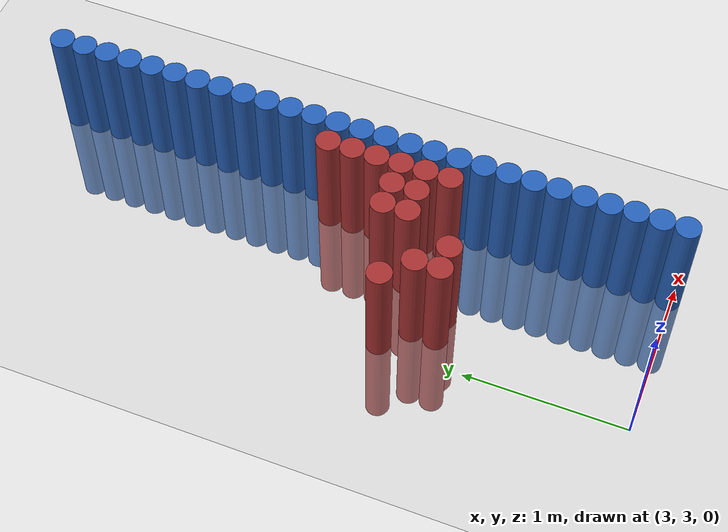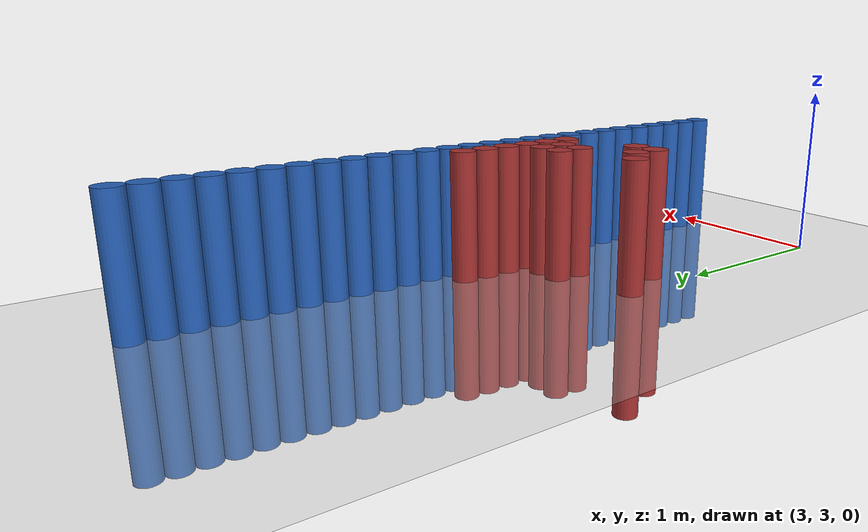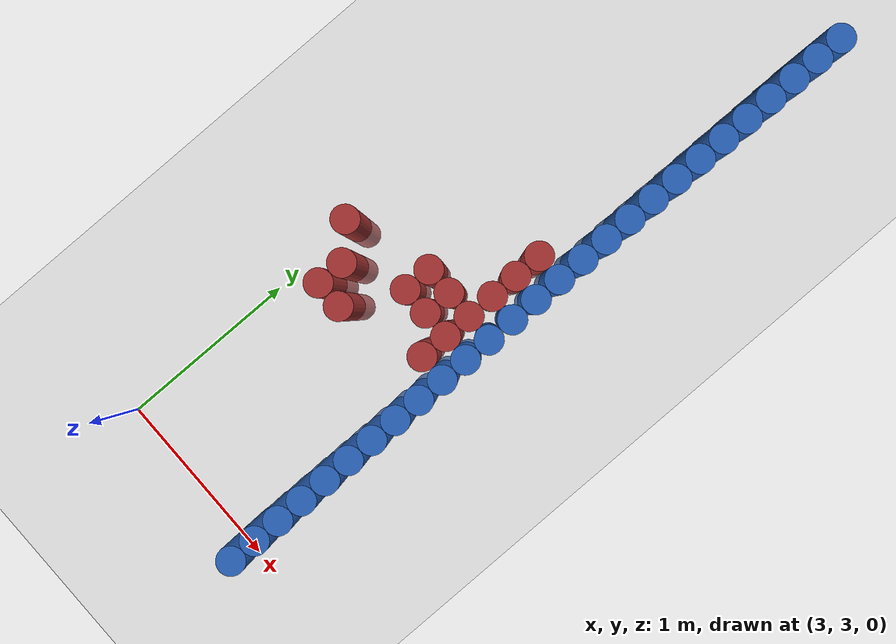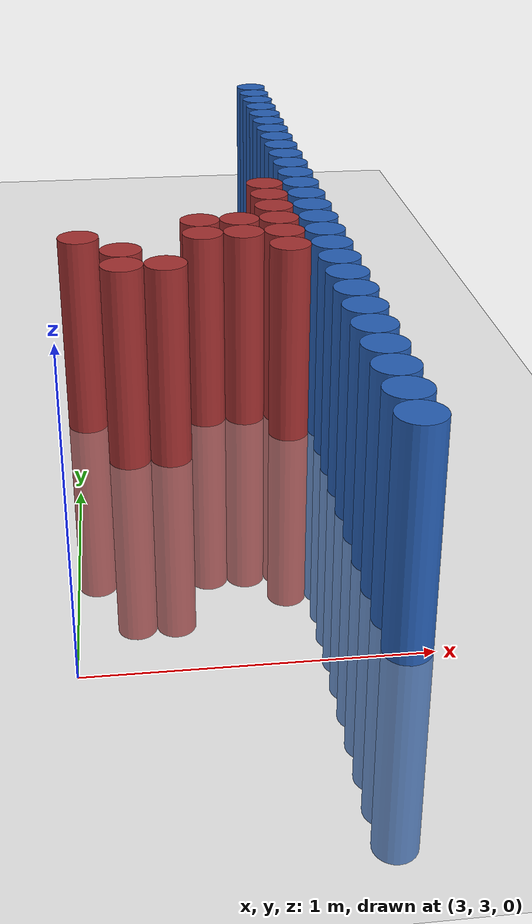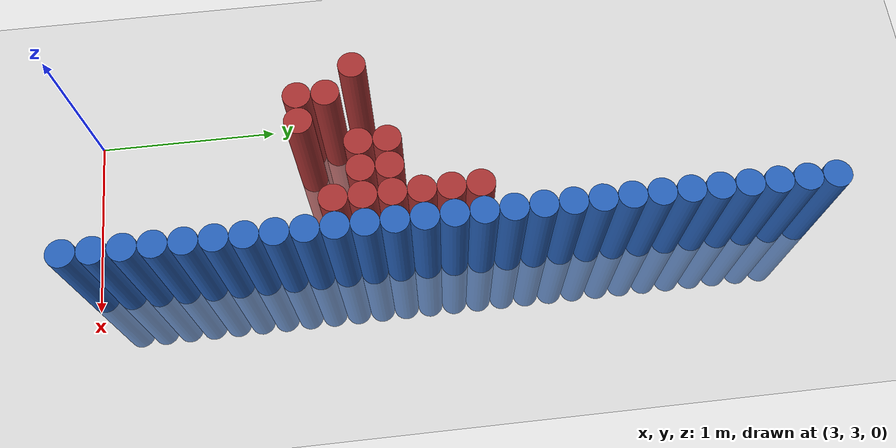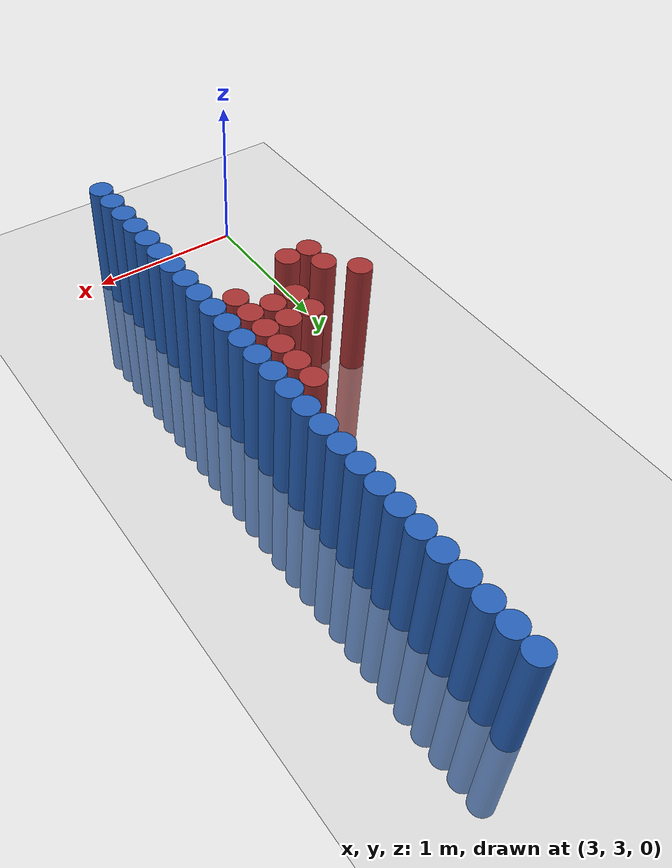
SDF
<sdf version="1.7">
 <world name="default">
  <model name="ground_plane">
   <static>1</static>
   <link name="link">
    <collision name="collision">
     <geometry><plane><normal>0 0 1</normal><size>100 100</size></plane></geometry>
     <surface><friction><ode><mu>100</mu><mu2>50</mu2></ode></friction></surface>
    </collision>
    <visual name="visual">
     <cast_shadows>0</cast_shadows>
     <geometry><plane><normal>0 0 1</normal><size>100 100</size></plane></geometry>
     <material>
      <script><uri>file://media/materials/scripts/gazebo.material</uri><name>Gazebo/Grey</name></script>
     </material>
    </visual>
   </link>
  </model>
  <model name="unit_cylinder_154">
   <static>1</static>
   <pose>3.925 3.025 0 0 -0 0</pose>
   <link name="link">
    <inertial>
     <mass>1</mass>
     <inertia><ixx>0.145833</ixx><ixy>0</ixy><ixz>0</ixz><iyy>0.145833</iyy><iyz>0</iyz><izz>0.125</izz></inertia>
    </inertial>
    <collision name="collision">
     <geometry><cylinder><radius>0.075</radius><length>1.5</length></cylinder></geometry>
    </collision>
    <visual name="visual">
     <geometry><cylinder><radius>0.075</radius><length>1.5</length></cylinder></geometry>
     <material><ambient>0.152 0.379 0.72 1</ambient><diffuse>0.152 0.379 0.72 1</diffuse></material>
     <material>
      <script><name>Gazebo/Grey</name><uri>file://media/materials/scripts/gazebo.material</uri></script>
     </material>
    </visual>
   </link>
  </model>
  <model name="unit_cylinder_156">
   <static>1</static>
   <pose>3.925 3.175 0 0 -0 0</pose>
   <link name="link">
    <inertial>
     <mass>1</mass>
     <inertia><ixx>0.145833</ixx><ixy>0</ixy><ixz>0</ixz><iyy>0.145833</iyy><iyz>0</iyz><izz>0.125</izz></inertia>
    </inertial>
    <collision name="collision">
     <geometry><cylinder><radius>0.075</radius><length>1.5</length></cylinder></geometry>
    </collision>
    <visual name="visual">
     <geometry><cylinder><radius>0.075</radius><length>1.5</length></cylinder></geometry>
     <material><ambient>0.152 0.379 0.72 1</ambient><diffuse>0.152 0.379 0.72 1</diffuse></material>
     <material>
      <script><name>Gazebo/Grey</name><uri>file://media/materials/scripts/gazebo.material</uri></script>
     </material>
    </visual>
   </link>
  </model>
  <model name="unit_cylinder_158">
   <static>1</static>
   <pose>3.925 3.325 0 0 -0 0</pose>
   <link name="link">
    <inertial>
     <mass>1</mass>
     <inertia><ixx>0.145833</ixx><ixy>0</ixy><ixz>0</ixz><iyy>0.145833</iyy><iyz>0</iyz><izz>0.125</izz></inertia>
    </inertial>
    <collision name="collision">
     <geometry><cylinder><radius>0.075</radius><length>1.5</length></cylinder></geometry>
    </collision>
    <visual name="visual">
     <geometry><cylinder><radius>0.075</radius><length>1.5</length></cylinder></geometry>
     <material><ambient>0.152 0.379 0.72 1</ambient><diffuse>0.152 0.379 0.72 1</diffuse></material>
     <material>
      <script><name>Gazebo/Grey</name><uri>file://media/materials/scripts/gazebo.material</uri></script>
     </material>
    </visual>
   </link>
  </model>
  <model name="unit_cylinder_160">
   <static>1</static>
   <pose>3.925 3.475 0 0 -0 0</pose>
   <link name="link">
    <inertial>
     <mass>1</mass>
     <inertia><ixx>0.145833</ixx><ixy>0</ixy><ixz>0</ixz><iyy>0.145833</iyy><iyz>0</iyz><izz>0.125</izz></inertia>
    </inertial>
    <collision name="collision">
     <geometry><cylinder><radius>0.075</radius><length>1.5</length></cylinder></geometry>
    </collision>
    <visual name="visual">
     <geometry><cylinder><radius>0.075</radius><length>1.5</length></cylinder></geometry>
     <material><ambient>0.152 0.379 0.72 1</ambient><diffuse>0.152 0.379 0.72 1</diffuse></material>
     <material>
      <script><name>Gazebo/Grey</name><uri>file://media/materials/scripts/gazebo.material</uri></script>
     </material>
    </visual>
   </link>
  </model>
  <model name="unit_cylinder_162">
   <static>1</static>
   <pose>3.925 3.625 0 0 -0 0</pose>
   <link name="link">
    <inertial>
     <mass>1</mass>
     <inertia><ixx>0.145833</ixx><ixy>0</ixy><ixz>0</ixz><iyy>0.145833</iyy><iyz>0</iyz><izz>0.125</izz></inertia>
    </inertial>
    <collision name="collision">
     <geometry><cylinder><radius>0.075</radius><length>1.5</length></cylinder></geometry>
    </collision>
    <visual name="visual">
     <geometry><cylinder><radius>0.075</radius><length>1.5</length></cylinder></geometry>
     <material><ambient>0.152 0.379 0.72 1</ambient><diffuse>0.152 0.379 0.72 1</diffuse></material>
     <material>
      <script><name>Gazebo/Grey</name><uri>file://media/materials/scripts/gazebo.material</uri></script>
     </material>
    </visual>
   </link>
  </model>
  <model name="unit_cylinder_164">
   <static>1</static>
   <pose>3.925 3.775 0 0 -0 0</pose>
   <link name="link">
    <inertial>
     <mass>1</mass>
     <inertia><ixx>0.145833</ixx><ixy>0</ixy><ixz>0</ixz><iyy>0.145833</iyy><iyz>0</iyz><izz>0.125</izz></inertia>
    </inertial>
    <collision name="collision">
     <geometry><cylinder><radius>0.075</radius><length>1.5</length></cylinder></geometry>
    </collision>
    <visual name="visual">
     <geometry><cylinder><radius>0.075</radius><length>1.5</length></cylinder></geometry>
     <material><ambient>0.152 0.379 0.72 1</ambient><diffuse>0.152 0.379 0.72 1</diffuse></material>
     <material>
      <script><name>Gazebo/Grey</name><uri>file://media/materials/scripts/gazebo.material</uri></script>
     </material>
    </visual>
   </link>
  </model>
  <model name="unit_cylinder_166">
   <static>1</static>
   <pose>3.925 3.925 0 0 -0 0</pose>
   <link name="link">
    <inertial>
     <mass>1</mass>
     <inertia><ixx>0.145833</ixx><ixy>0</ixy><ixz>0</ixz><iyy>0.145833</iyy><iyz>0</iyz><izz>0.125</izz></inertia>
    </inertial>
    <collision name="collision">
     <geometry><cylinder><radius>0.075</radius><length>1.5</length></cylinder></geometry>
    </collision>
    <visual name="visual">
     <geometry><cylinder><radius>0.075</radius><length>1.5</length></cylinder></geometry>
     <material><ambient>0.152 0.379 0.72 1</ambient><diffuse>0.152 0.379 0.72 1</diffuse></material>
     <material>
      <script><name>Gazebo/Grey</name><uri>file://media/materials/scripts/gazebo.material</uri></script>
     </material>
    </visual>
   </link>
  </model>
  <model name="unit_cylinder_168">
   <static>1</static>
   <pose>3.925 4.075 0 0 -0 0</pose>
   <link name="link">
    <inertial>
     <mass>1</mass>
     <inertia><ixx>0.145833</ixx><ixy>0</ixy><ixz>0</ixz><iyy>0.145833</iyy><iyz>0</iyz><izz>0.125</izz></inertia>
    </inertial>
    <collision name="collision">
     <geometry><cylinder><radius>0.075</radius><length>1.5</length></cylinder></geometry>
    </collision>
    <visual name="visual">
     <geometry><cylinder><radius>0.075</radius><length>1.5</length></cylinder></geometry>
     <material><ambient>0.152 0.379 0.72 1</ambient><diffuse>0.152 0.379 0.72 1</diffuse></material>
     <material>
      <script><name>Gazebo/Grey</name><uri>file://media/materials/scripts/gazebo.material</uri></script>
     </material>
    </visual>
   </link>
  </model>
  <model name="unit_cylinder_170">
   <static>1</static>
   <pose>3.925 4.225 0 0 -0 0</pose>
   <link name="link">
    <inertial>
     <mass>1</mass>
     <inertia><ixx>0.145833</ixx><ixy>0</ixy><ixz>0</ixz><iyy>0.145833</iyy><iyz>0</iyz><izz>0.125</izz></inertia>
    </inertial>
    <collision name="collision">
     <geometry><cylinder><radius>0.075</radius><length>1.5</length></cylinder></geometry>
    </collision>
    <visual name="visual">
     <geometry><cylinder><radius>0.075</radius><length>1.5</length></cylinder></geometry>
     <material><ambient>0.152 0.379 0.72 1</ambient><diffuse>0.152 0.379 0.72 1</diffuse></material>
     <material>
      <script><name>Gazebo/Grey</name><uri>file://media/materials/scripts/gazebo.material</uri></script>
     </material>
    </visual>
   </link>
  </model>
  <model name="unit_cylinder_172">
   <static>1</static>
   <pose>3.925 4.375 0 0 -0 0</pose>
   <link name="link">
    <inertial>
     <mass>1</mass>
     <inertia><ixx>0.145833</ixx><ixy>0</ixy><ixz>0</ixz><iyy>0.145833</iyy><iyz>0</iyz><izz>0.125</izz></inertia>
    </inertial>
    <collision name="collision">
     <geometry><cylinder><radius>0.075</radius><length>1.5</length></cylinder></geometry>
    </collision>
    <visual name="visual">
     <geometry><cylinder><radius>0.075</radius><length>1.5</length></cylinder></geometry>
     <material><ambient>0.152 0.379 0.72 1</ambient><diffuse>0.152 0.379 0.72 1</diffuse></material>
     <material>
      <script><name>Gazebo/Grey</name><uri>file://media/materials/scripts/gazebo.material</uri></script>
     </material>
    </visual>
   </link>
  </model>
  <model name="unit_cylinder_174">
   <static>1</static>
   <pose>3.925 4.525 0 0 -0 0</pose>
   <link name="link">
    <inertial>
     <mass>1</mass>
     <inertia><ixx>0.145833</ixx><ixy>0</ixy><ixz>0</ixz><iyy>0.145833</iyy><iyz>0</iyz><izz>0.125</izz></inertia>
    </inertial>
    <collision name="collision">
     <geometry><cylinder><radius>0.075</radius><length>1.5</length></cylinder></geometry>
    </collision>
    <visual name="visual">
     <geometry><cylinder><radius>0.075</radius><length>1.5</length></cylinder></geometry>
     <material><ambient>0.152 0.379 0.72 1</ambient><diffuse>0.152 0.379 0.72 1</diffuse></material>
     <material>
      <script><name>Gazebo/Grey</name><uri>file://media/materials/scripts/gazebo.material</uri></script>
     </material>
    </visual>
   </link>
  </model>
  <model name="unit_cylinder_176">
   <static>1</static>
   <pose>3.925 4.675 0 0 -0 0</pose>
   <link name="link">
    <inertial>
     <mass>1</mass>
     <inertia><ixx>0.145833</ixx><ixy>0</ixy><ixz>0</ixz><iyy>0.145833</iyy><iyz>0</iyz><izz>0.125</izz></inertia>
    </inertial>
    <collision name="collision">
     <geometry><cylinder><radius>0.075</radius><length>1.5</length></cylinder></geometry>
    </collision>
    <visual name="visual">
     <geometry><cylinder><radius>0.075</radius><length>1.5</length></cylinder></geometry>
     <material><ambient>0.152 0.379 0.72 1</ambient><diffuse>0.152 0.379 0.72 1</diffuse></material>
     <material>
      <script><name>Gazebo/Grey</name><uri>file://media/materials/scripts/gazebo.material</uri></script>
     </material>
    </visual>
   </link>
  </model>
  <model name="unit_cylinder_178">
   <static>1</static>
   <pose>3.925 4.825 0 0 -0 0</pose>
   <link name="link">
    <inertial>
     <mass>1</mass>
     <inertia><ixx>0.145833</ixx><ixy>0</ixy><ixz>0</ixz><iyy>0.145833</iyy><iyz>0</iyz><izz>0.125</izz></inertia>
    </inertial>
    <collision name="collision">
     <geometry><cylinder><radius>0.075</radius><length>1.5</length></cylinder></geometry>
    </collision>
    <visual name="visual">
     <geometry><cylinder><radius>0.075</radius><length>1.5</length></cylinder></geometry>
     <material><ambient>0.152 0.379 0.72 1</ambient><diffuse>0.152 0.379 0.72 1</diffuse></material>
     <material>
      <script><name>Gazebo/Grey</name><uri>file://media/materials/scripts/gazebo.material</uri></script>
     </material>
    </visual>
   </link>
  </model>
  <model name="unit_cylinder_180">
   <static>1</static>
   <pose>3.925 4.975 0 0 -0 0</pose>
   <link name="link">
    <inertial>
     <mass>1</mass>
     <inertia><ixx>0.145833</ixx><ixy>0</ixy><ixz>0</ixz><iyy>0.145833</iyy><iyz>0</iyz><izz>0.125</izz></inertia>
    </inertial>
    <collision name="collision">
     <geometry><cylinder><radius>0.075</radius><length>1.5</length></cylinder></geometry>
    </collision>
    <visual name="visual">
     <geometry><cylinder><radius>0.075</radius><length>1.5</length></cylinder></geometry>
     <material><ambient>0.152 0.379 0.72 1</ambient><diffuse>0.152 0.379 0.72 1</diffuse></material>
     <material>
      <script><name>Gazebo/Grey</name><uri>file://media/materials/scripts/gazebo.material</uri></script>
     </material>
    </visual>
   </link>
  </model>
  <model name="unit_cylinder_182">
   <static>1</static>
   <pose>3.925 5.125 0 0 -0 0</pose>
   <link name="link">
    <inertial>
     <mass>1</mass>
     <inertia><ixx>0.145833</ixx><ixy>0</ixy><ixz>0</ixz><iyy>0.145833</iyy><iyz>0</iyz><izz>0.125</izz></inertia>
    </inertial>
    <collision name="collision">
     <geometry><cylinder><radius>0.075</radius><length>1.5</length></cylinder></geometry>
    </collision>
    <visual name="visual">
     <geometry><cylinder><radius>0.075</radius><length>1.5</length></cylinder></geometry>
     <material><ambient>0.152 0.379 0.72 1</ambient><diffuse>0.152 0.379 0.72 1</diffuse></material>
     <material>
      <script><name>Gazebo/Grey</name><uri>file://media/materials/scripts/gazebo.material</uri></script>
     </material>
    </visual>
   </link>
  </model>
  <model name="unit_cylinder_184">
   <static>1</static>
   <pose>3.925 5.275 0 0 -0 0</pose>
   <link name="link">
    <inertial>
     <mass>1</mass>
     <inertia><ixx>0.145833</ixx><ixy>0</ixy><ixz>0</ixz><iyy>0.145833</iyy><iyz>0</iyz><izz>0.125</izz></inertia>
    </inertial>
    <collision name="collision">
     <geometry><cylinder><radius>0.075</radius><length>1.5</length></cylinder></geometry>
    </collision>
    <visual name="visual">
     <geometry><cylinder><radius>0.075</radius><length>1.5</length></cylinder></geometry>
     <material><ambient>0.152 0.379 0.72 1</ambient><diffuse>0.152 0.379 0.72 1</diffuse></material>
     <material>
      <script><name>Gazebo/Grey</name><uri>file://media/materials/scripts/gazebo.material</uri></script>
     </material>
    </visual>
   </link>
  </model>
  <model name="unit_cylinder_186">
   <static>1</static>
   <pose>3.925 5.425 0 0 -0 0</pose>
   <link name="link">
    <inertial>
     <mass>1</mass>
     <inertia><ixx>0.145833</ixx><ixy>0</ixy><ixz>0</ixz><iyy>0.145833</iyy><iyz>0</iyz><izz>0.125</izz></inertia>
    </inertial>
    <collision name="collision">
     <geometry><cylinder><radius>0.075</radius><length>1.5</length></cylinder></geometry>
    </collision>
    <visual name="visual">
     <geometry><cylinder><radius>0.075</radius><length>1.5</length></cylinder></geometry>
     <material><ambient>0.152 0.379 0.72 1</ambient><diffuse>0.152 0.379 0.72 1</diffuse></material>
     <material>
      <script><name>Gazebo/Grey</name><uri>file://media/materials/scripts/gazebo.material</uri></script>
     </material>
    </visual>
   </link>
  </model>
  <model name="unit_cylinder_188">
   <static>1</static>
   <pose>3.925 5.575 0 0 -0 0</pose>
   <link name="link">
    <inertial>
     <mass>1</mass>
     <inertia><ixx>0.145833</ixx><ixy>0</ixy><ixz>0</ixz><iyy>0.145833</iyy><iyz>0</iyz><izz>0.125</izz></inertia>
    </inertial>
    <collision name="collision">
     <geometry><cylinder><radius>0.075</radius><length>1.5</length></cylinder></geometry>
    </collision>
    <visual name="visual">
     <geometry><cylinder><radius>0.075</radius><length>1.5</length></cylinder></geometry>
     <material><ambient>0.152 0.379 0.72 1</ambient><diffuse>0.152 0.379 0.72 1</diffuse></material>
     <material>
      <script><name>Gazebo/Grey</name><uri>file://media/materials/scripts/gazebo.material</uri></script>
     </material>
    </visual>
   </link>
  </model>
  <model name="unit_cylinder_190">
   <static>1</static>
   <pose>3.925 5.725 0 0 -0 0</pose>
   <link name="link">
    <inertial>
     <mass>1</mass>
     <inertia><ixx>0.145833</ixx><ixy>0</ixy><ixz>0</ixz><iyy>0.145833</iyy><iyz>0</iyz><izz>0.125</izz></inertia>
    </inertial>
    <collision name="collision">
     <geometry><cylinder><radius>0.075</radius><length>1.5</length></cylinder></geometry>
    </collision>
    <visual name="visual">
     <geometry><cylinder><radius>0.075</radius><length>1.5</length></cylinder></geometry>
     <material><ambient>0.152 0.379 0.72 1</ambient><diffuse>0.152 0.379 0.72 1</diffuse></material>
     <material>
      <script><name>Gazebo/Grey</name><uri>file://media/materials/scripts/gazebo.material</uri></script>
     </material>
    </visual>
   </link>
  </model>
  <model name="unit_cylinder_192">
   <static>1</static>
   <pose>3.925 5.875 0 0 -0 0</pose>
   <link name="link">
    <inertial>
     <mass>1</mass>
     <inertia><ixx>0.145833</ixx><ixy>0</ixy><ixz>0</ixz><iyy>0.145833</iyy><iyz>0</iyz><izz>0.125</izz></inertia>
    </inertial>
    <collision name="collision">
     <geometry><cylinder><radius>0.075</radius><length>1.5</length></cylinder></geometry>
    </collision>
    <visual name="visual">
     <geometry><cylinder><radius>0.075</radius><length>1.5</length></cylinder></geometry>
     <material><ambient>0.152 0.379 0.72 1</ambient><diffuse>0.152 0.379 0.72 1</diffuse></material>
     <material>
      <script><name>Gazebo/Grey</name><uri>file://media/materials/scripts/gazebo.material</uri></script>
     </material>
    </visual>
   </link>
  </model>
  <model name="unit_cylinder_194">
   <static>1</static>
   <pose>3.925 6.025 0 0 -0 0</pose>
   <link name="link">
    <inertial>
     <mass>1</mass>
     <inertia><ixx>0.145833</ixx><ixy>0</ixy><ixz>0</ixz><iyy>0.145833</iyy><iyz>0</iyz><izz>0.125</izz></inertia>
    </inertial>
    <collision name="collision">
     <geometry><cylinder><radius>0.075</radius><length>1.5</length></cylinder></geometry>
    </collision>
    <visual name="visual">
     <geometry><cylinder><radius>0.075</radius><length>1.5</length></cylinder></geometry>
     <material><ambient>0.152 0.379 0.72 1</ambient><diffuse>0.152 0.379 0.72 1</diffuse></material>
     <material>
      <script><name>Gazebo/Grey</name><uri>file://media/materials/scripts/gazebo.material</uri></script>
     </material>
    </visual>
   </link>
  </model>
  <model name="unit_cylinder_196">
   <static>1</static>
   <pose>3.925 6.175 0 0 -0 0</pose>
   <link name="link">
    <inertial>
     <mass>1</mass>
     <inertia><ixx>0.145833</ixx><ixy>0</ixy><ixz>0</ixz><iyy>0.145833</iyy><iyz>0</iyz><izz>0.125</izz></inertia>
    </inertial>
    <collision name="collision">
     <geometry><cylinder><radius>0.075</radius><length>1.5</length></cylinder></geometry>
    </collision>
    <visual name="visual">
     <geometry><cylinder><radius>0.075</radius><length>1.5</length></cylinder></geometry>
     <material><ambient>0.152 0.379 0.72 1</ambient><diffuse>0.152 0.379 0.72 1</diffuse></material>
     <material>
      <script><name>Gazebo/Grey</name><uri>file://media/materials/scripts/gazebo.material</uri></script>
     </material>
    </visual>
   </link>
  </model>
  <model name="unit_cylinder_198">
   <static>1</static>
   <pose>3.925 6.325 0 0 -0 0</pose>
   <link name="link">
    <inertial>
     <mass>1</mass>
     <inertia><ixx>0.145833</ixx><ixy>0</ixy><ixz>0</ixz><iyy>0.145833</iyy><iyz>0</iyz><izz>0.125</izz></inertia>
    </inertial>
    <collision name="collision">
     <geometry><cylinder><radius>0.075</radius><length>1.5</length></cylinder></geometry>
    </collision>
    <visual name="visual">
     <geometry><cylinder><radius>0.075</radius><length>1.5</length></cylinder></geometry>
     <material><ambient>0.152 0.379 0.72 1</ambient><diffuse>0.152 0.379 0.72 1</diffuse></material>
     <material>
      <script><name>Gazebo/Grey</name><uri>file://media/materials/scripts/gazebo.material</uri></script>
     </material>
    </visual>
   </link>
  </model>
  <model name="unit_cylinder_200">
   <static>1</static>
   <pose>3.925 6.475 0 0 -0 0</pose>
   <link name="link">
    <inertial>
     <mass>1</mass>
     <inertia><ixx>0.145833</ixx><ixy>0</ixy><ixz>0</ixz><iyy>0.145833</iyy><iyz>0</iyz><izz>0.125</izz></inertia>
    </inertial>
    <collision name="collision">
     <geometry><cylinder><radius>0.075</radius><length>1.5</length></cylinder></geometry>
    </collision>
    <visual name="visual">
     <geometry><cylinder><radius>0.075</radius><length>1.5</length></cylinder></geometry>
     <material><ambient>0.152 0.379 0.72 1</ambient><diffuse>0.152 0.379 0.72 1</diffuse></material>
     <material>
      <script><name>Gazebo/Grey</name><uri>file://media/materials/scripts/gazebo.material</uri></script>
     </material>
    </visual>
   </link>
  </model>
  <model name="unit_cylinder_202">
   <static>1</static>
   <pose>3.925 6.625 0 0 -0 0</pose>
   <link name="link">
    <inertial>
     <mass>1</mass>
     <inertia><ixx>0.145833</ixx><ixy>0</ixy><ixz>0</ixz><iyy>0.145833</iyy><iyz>0</iyz><izz>0.125</izz></inertia>
    </inertial>
    <collision name="collision">
     <geometry><cylinder><radius>0.075</radius><length>1.5</length></cylinder></geometry>
    </collision>
    <visual name="visual">
     <geometry><cylinder><radius>0.075</radius><length>1.5</length></cylinder></geometry>
     <material><ambient>0.152 0.379 0.72 1</ambient><diffuse>0.152 0.379 0.72 1</diffuse></material>
     <material>
      <script><name>Gazebo/Grey</name><uri>file://media/materials/scripts/gazebo.material</uri></script>
     </material>
    </visual>
   </link>
  </model>
  <model name="unit_cylinder_204">
   <static>1</static>
   <pose>3.925 6.775 0 0 -0 0</pose>
   <link name="link">
    <inertial>
     <mass>1</mass>
     <inertia><ixx>0.145833</ixx><ixy>0</ixy><ixz>0</ixz><iyy>0.145833</iyy><iyz>0</iyz><izz>0.125</izz></inertia>
    </inertial>
    <collision name="collision">
     <geometry><cylinder><radius>0.075</radius><length>1.5</length></cylinder></geometry>
    </collision>
    <visual name="visual">
     <geometry><cylinder><radius>0.075</radius><length>1.5</length></cylinder></geometry>
     <material><ambient>0.152 0.379 0.72 1</ambient><diffuse>0.152 0.379 0.72 1</diffuse></material>
     <material>
      <script><name>Gazebo/Grey</name><uri>file://media/materials/scripts/gazebo.material</uri></script>
     </material>
    </visual>
   </link>
  </model>
  <model name="unit_cylinder_206">
   <static>1</static>
   <pose>3.925 6.925 0 0 -0 0</pose>
   <link name="link">
    <inertial>
     <mass>1</mass>
     <inertia><ixx>0.145833</ixx><ixy>0</ixy><ixz>0</ixz><iyy>0.145833</iyy><iyz>0</iyz><izz>0.125</izz></inertia>
    </inertial>
    <collision name="collision">
     <geometry><cylinder><radius>0.075</radius><length>1.5</length></cylinder></geometry>
    </collision>
    <visual name="visual">
     <geometry><cylinder><radius>0.075</radius><length>1.5</length></cylinder></geometry>
     <material><ambient>0.152 0.379 0.72 1</ambient><diffuse>0.152 0.379 0.72 1</diffuse></material>
     <material>
      <script><name>Gazebo/Grey</name><uri>file://media/materials/scripts/gazebo.material</uri></script>
     </material>
    </visual>
   </link>
  </model>
  <model name="unit_cylinder_427">
   <static>1</static>
   <pose>3.025 4.525 0 0 -0 0</pose>
   <link name="link">
    <inertial>
     <mass>1</mass>
     <inertia><ixx>0.145833</ixx><ixy>0</ixy><ixz>0</ixz><iyy>0.145833</iyy><iyz>0</iyz><izz>0.125</izz></inertia>
    </inertial>
    <collision name="collision">
     <geometry><cylinder><radius>0.075</radius><length>1.5</length></cylinder></geometry>
    </collision>
    <visual name="visual">
     <geometry><cylinder><radius>0.075</radius><length>1.5</length></cylinder></geometry>
     <material><ambient>0.648 0.192 0.192 1</ambient><diffuse>0.648 0.192 0.192 1</diffuse></material>
     <material>
      <script><name>Gazebo/Grey</name><uri>file://media/materials/scripts/gazebo.material</uri></script>
     </material>
    </visual>
   </link>
  </model>
  <model name="unit_cylinder_430">
   <static>1</static>
   <pose>3.175 4.225 0 0 -0 0</pose>
   <link name="link">
    <inertial>
     <mass>1</mass>
     <inertia><ixx>0.145833</ixx><ixy>0</ixy><ixz>0</ixz><iyy>0.145833</iyy><iyz>0</iyz><izz>0.125</izz></inertia>
    </inertial>
    <collision name="collision">
     <geometry><cylinder><radius>0.075</radius><length>1.5</length></cylinder></geometry>
    </collision>
    <visual name="visual">
     <geometry><cylinder><radius>0.075</radius><length>1.5</length></cylinder></geometry>
     <material><ambient>0.648 0.192 0.192 1</ambient><diffuse>0.648 0.192 0.192 1</diffuse></material>
     <material>
      <script><name>Gazebo/Grey</name><uri>file://media/materials/scripts/gazebo.material</uri></script>
     </material>
    </visual>
   </link>
  </model>
  <model name="unit_cylinder_431">
   <static>1</static>
   <pose>3.175 4.375 0 0 -0 0</pose>
   <link name="link">
    <inertial>
     <mass>1</mass>
     <inertia><ixx>0.145833</ixx><ixy>0</ixy><ixz>0</ixz><iyy>0.145833</iyy><iyz>0</iyz><izz>0.125</izz></inertia>
    </inertial>
    <collision name="collision">
     <geometry><cylinder><radius>0.075</radius><length>1.5</length></cylinder></geometry>
    </collision>
    <visual name="visual">
     <geometry><cylinder><radius>0.075</radius><length>1.5</length></cylinder></geometry>
     <material><ambient>0.648 0.192 0.192 1</ambient><diffuse>0.648 0.192 0.192 1</diffuse></material>
     <material>
      <script><name>Gazebo/Grey</name><uri>file://media/materials/scripts/gazebo.material</uri></script>
     </material>
    </visual>
   </link>
  </model>
  <model name="unit_cylinder_434">
   <static>1</static>
   <pose>3.325 4.225 0 0 -0 0</pose>
   <link name="link">
    <inertial>
     <mass>1</mass>
     <inertia><ixx>0.145833</ixx><ixy>0</ixy><ixz>0</ixz><iyy>0.145833</iyy><iyz>0</iyz><izz>0.125</izz></inertia>
    </inertial>
    <collision name="collision">
     <geometry><cylinder><radius>0.075</radius><length>1.5</length></cylinder></geometry>
    </collision>
    <visual name="visual">
     <geometry><cylinder><radius>0.075</radius><length>1.5</length></cylinder></geometry>
     <material><ambient>0.648 0.192 0.192 1</ambient><diffuse>0.648 0.192 0.192 1</diffuse></material>
     <material>
      <script><name>Gazebo/Grey</name><uri>file://media/materials/scripts/gazebo.material</uri></script>
     </material>
    </visual>
   </link>
  </model>
  <model name="unit_cylinder_438">
   <static>1</static>
   <pose>3.475 4.525 0 0 -0 0</pose>
   <link name="link">
    <inertial>
     <mass>1</mass>
     <inertia><ixx>0.145833</ixx><ixy>0</ixy><ixz>0</ixz><iyy>0.145833</iyy><iyz>0</iyz><izz>0.125</izz></inertia>
    </inertial>
    <collision name="collision">
     <geometry><cylinder><radius>0.075</radius><length>1.5</length></cylinder></geometry>
    </collision>
    <visual name="visual">
     <geometry><cylinder><radius>0.075</radius><length>1.5</length></cylinder></geometry>
     <material><ambient>0.648 0.192 0.192 1</ambient><diffuse>0.648 0.192 0.192 1</diffuse></material>
     <material>
      <script><name>Gazebo/Grey</name><uri>file://media/materials/scripts/gazebo.material</uri></script>
     </material>
    </visual>
   </link>
  </model>
  <model name="unit_cylinder_439">
   <static>1</static>
   <pose>3.475 4.675 0 0 -0 0</pose>
   <link name="link">
    <inertial>
     <mass>1</mass>
     <inertia><ixx>0.145833</ixx><ixy>0</ixy><ixz>0</ixz><iyy>0.145833</iyy><iyz>0</iyz><izz>0.125</izz></inertia>
    </inertial>
    <collision name="collision">
     <geometry><cylinder><radius>0.075</radius><length>1.5</length></cylinder></geometry>
    </collision>
    <visual name="visual">
     <geometry><cylinder><radius>0.075</radius><length>1.5</length></cylinder></geometry>
     <material><ambient>0.648 0.192 0.192 1</ambient><diffuse>0.648 0.192 0.192 1</diffuse></material>
     <material>
      <script><name>Gazebo/Grey</name><uri>file://media/materials/scripts/gazebo.material</uri></script>
     </material>
    </visual>
   </link>
  </model>
  <model name="unit_cylinder_442">
   <static>1</static>
   <pose>3.625 4.525 0 0 -0 0</pose>
   <link name="link">
    <inertial>
     <mass>1</mass>
     <inertia><ixx>0.145833</ixx><ixy>0</ixy><ixz>0</ixz><iyy>0.145833</iyy><iyz>0</iyz><izz>0.125</izz></inertia>
    </inertial>
    <collision name="collision">
     <geometry><cylinder><radius>0.075</radius><length>1.5</length></cylinder></geometry>
    </collision>
    <visual name="visual">
     <geometry><cylinder><radius>0.075</radius><length>1.5</length></cylinder></geometry>
     <material><ambient>0.648 0.192 0.192 1</ambient><diffuse>0.648 0.192 0.192 1</diffuse></material>
     <material>
      <script><name>Gazebo/Grey</name><uri>file://media/materials/scripts/gazebo.material</uri></script>
     </material>
    </visual>
   </link>
  </model>
  <model name="unit_cylinder_443">
   <static>1</static>
   <pose>3.625 4.675 0 0 -0 0</pose>
   <link name="link">
    <inertial>
     <mass>1</mass>
     <inertia><ixx>0.145833</ixx><ixy>0</ixy><ixz>0</ixz><iyy>0.145833</iyy><iyz>0</iyz><izz>0.125</izz></inertia>
    </inertial>
    <collision name="collision">
     <geometry><cylinder><radius>0.075</radius><length>1.5</length></cylinder></geometry>
    </collision>
    <visual name="visual">
     <geometry><cylinder><radius>0.075</radius><length>1.5</length></cylinder></geometry>
     <material><ambient>0.648 0.192 0.192 1</ambient><diffuse>0.648 0.192 0.192 1</diffuse></material>
     <material>
      <script><name>Gazebo/Grey</name><uri>file://media/materials/scripts/gazebo.material</uri></script>
     </material>
    </visual>
   </link>
  </model>
  <model name="unit_cylinder_456">
   <static>1</static>
   <pose>3.775 4.375 0 0 -0 0</pose>
   <link name="link">
    <inertial>
     <mass>1</mass>
     <inertia><ixx>0.145833</ixx><ixy>0</ixy><ixz>0</ixz><iyy>0.145833</iyy><iyz>0</iyz><izz>0.125</izz></inertia>
    </inertial>
    <collision name="collision">
     <geometry><cylinder><radius>0.075</radius><length>1.5</length></cylinder></geometry>
    </collision>
    <visual name="visual">
     <geometry><cylinder><radius>0.075</radius><length>1.5</length></cylinder></geometry>
     <material><ambient>0.648 0.192 0.192 1</ambient><diffuse>0.648 0.192 0.192 1</diffuse></material>
     <material>
      <script><name>Gazebo/Grey</name><uri>file://media/materials/scripts/gazebo.material</uri></script>
     </material>
    </visual>
   </link>
  </model>
  <model name="unit_cylinder_457">
   <static>1</static>
   <pose>3.775 4.525 0 0 -0 0</pose>
   <link name="link">
    <inertial>
     <mass>1</mass>
     <inertia><ixx>0.145833</ixx><ixy>0</ixy><ixz>0</ixz><iyy>0.145833</iyy><iyz>0</iyz><izz>0.125</izz></inertia>
    </inertial>
    <collision name="collision">
     <geometry><cylinder><radius>0.075</radius><length>1.5</length></cylinder></geometry>
    </collision>
    <visual name="visual">
     <geometry><cylinder><radius>0.075</radius><length>1.5</length></cylinder></geometry>
     <material><ambient>0.648 0.192 0.192 1</ambient><diffuse>0.648 0.192 0.192 1</diffuse></material>
     <material>
      <script><name>Gazebo/Grey</name><uri>file://media/materials/scripts/gazebo.material</uri></script>
     </material>
    </visual>
   </link>
  </model>
  <model name="unit_cylinder_458">
   <static>1</static>
   <pose>3.775 4.675 0 0 -0 0</pose>
   <link name="link">
    <inertial>
     <mass>1</mass>
     <inertia><ixx>0.145833</ixx><ixy>0</ixy><ixz>0</ixz><iyy>0.145833</iyy><iyz>0</iyz><izz>0.125</izz></inertia>
    </inertial>
    <collision name="collision">
     <geometry><cylinder><radius>0.075</radius><length>1.5</length></cylinder></geometry>
    </collision>
    <visual name="visual">
     <geometry><cylinder><radius>0.075</radius><length>1.5</length></cylinder></geometry>
     <material><ambient>0.648 0.192 0.192 1</ambient><diffuse>0.648 0.192 0.192 1</diffuse></material>
     <material>
      <script><name>Gazebo/Grey</name><uri>file://media/materials/scripts/gazebo.material</uri></script>
     </material>
    </visual>
   </link>
  </model>
  <model name="unit_cylinder_459">
   <static>1</static>
   <pose>3.775 4.825 0 0 -0 0</pose>
   <link name="link">
    <inertial>
     <mass>1</mass>
     <inertia><ixx>0.145833</ixx><ixy>0</ixy><ixz>0</ixz><iyy>0.145833</iyy><iyz>0</iyz><izz>0.125</izz></inertia>
    </inertial>
    <collision name="collision">
     <geometry><cylinder><radius>0.075</radius><length>1.5</length></cylinder></geometry>
    </collision>
    <visual name="visual">
     <geometry><cylinder><radius>0.075</radius><length>1.5</length></cylinder></geometry>
     <material><ambient>0.648 0.192 0.192 1</ambient><diffuse>0.648 0.192 0.192 1</diffuse></material>
     <material>
      <script><name>Gazebo/Grey</name><uri>file://media/materials/scripts/gazebo.material</uri></script>
     </material>
    </visual>
   </link>
  </model>
  <model name="unit_cylinder_460">
   <static>1</static>
   <pose>3.775 4.975 0 0 -0 0</pose>
   <link name="link">
    <inertial>
     <mass>1</mass>
     <inertia><ixx>0.145833</ixx><ixy>0</ixy><ixz>0</ixz><iyy>0.145833</iyy><iyz>0</iyz><izz>0.125</izz></inertia>
    </inertial>
    <collision name="collision">
     <geometry><cylinder><radius>0.075</radius><length>1.5</length></cylinder></geometry>
    </collision>
    <visual name="visual">
     <geometry><cylinder><radius>0.075</radius><length>1.5</length></cylinder></geometry>
     <material><ambient>0.648 0.192 0.192 1</ambient><diffuse>0.648 0.192 0.192 1</diffuse></material>
     <material>
      <script><name>Gazebo/Grey</name><uri>file://media/materials/scripts/gazebo.material</uri></script>
     </material>
    </visual>
   </link>
  </model>
  <model name="unit_cylinder_461">
   <static>1</static>
   <pose>3.775 5.125 0 0 -0 0</pose>
   <link name="link">
    <inertial>
     <mass>1</mass>
     <inertia><ixx>0.145833</ixx><ixy>0</ixy><ixz>0</ixz><iyy>0.145833</iyy><iyz>0</iyz><izz>0.125</izz></inertia>
    </inertial>
    <collision name="collision">
     <geometry><cylinder><radius>0.075</radius><length>1.5</length></cylinder></geometry>
    </collision>
    <visual name="visual">
     <geometry><cylinder><radius>0.075</radius><length>1.5</length></cylinder></geometry>
     <material><ambient>0.648 0.192 0.192 1</ambient><diffuse>0.648 0.192 0.192 1</diffuse></material>
     <material>
      <script><name>Gazebo/Grey</name><uri>file://media/materials/scripts/gazebo.material</uri></script>
     </material>
    </visual>
   </link>
  </model>
  <model name="unit_cylinder_495">
   <static>1</static>
   <pose>3.925 3.025 0 0 -0 0</pose>
   <link name="link">
    <inertial>
     <mass>1</mass>
     <inertia><ixx>0.145833</ixx><ixy>0</ixy><ixz>0</ixz><iyy>0.145833</iyy><iyz>0</iyz><izz>0.125</izz></inertia>
    </inertial>
    <collision name="collision">
     <geometry><cylinder><radius>0.075</radius><length>1.5</length></cylinder></geometry>
    </collision>
    <visual name="visual">
     <geometry><cylinder><radius>0.075</radius><length>1.5</length></cylinder></geometry>
     <material><ambient>0.152 0.379 0.72 1</ambient><diffuse>0.152 0.379 0.72 1</diffuse></material>
     <material>
      <script><name>Gazebo/Grey</name><uri>file://media/materials/scripts/gazebo.material</uri></script>
     </material>
    </visual>
   </link>
  </model>
  <model name="unit_cylinder_496">
   <static>1</static>
   <pose>3.925 3.175 0 0 -0 0</pose>
   <link name="link">
    <inertial>
     <mass>1</mass>
     <inertia><ixx>0.145833</ixx><ixy>0</ixy><ixz>0</ixz><iyy>0.145833</iyy><iyz>0</iyz><izz>0.125</izz></inertia>
    </inertial>
    <collision name="collision">
     <geometry><cylinder><radius>0.075</radius><length>1.5</length></cylinder></geometry>
    </collision>
    <visual name="visual">
     <geometry><cylinder><radius>0.075</radius><length>1.5</length></cylinder></geometry>
     <material><ambient>0.152 0.379 0.72 1</ambient><diffuse>0.152 0.379 0.72 1</diffuse></material>
     <material>
      <script><name>Gazebo/Grey</name><uri>file://media/materials/scripts/gazebo.material</uri></script>
     </material>
    </visual>
   </link>
  </model>
  <model name="unit_cylinder_497">
   <static>1</static>
   <pose>3.925 3.325 0 0 -0 0</pose>
   <link name="link">
    <inertial>
     <mass>1</mass>
     <inertia><ixx>0.145833</ixx><ixy>0</ixy><ixz>0</ixz><iyy>0.145833</iyy><iyz>0</iyz><izz>0.125</izz></inertia>
    </inertial>
    <collision name="collision">
     <geometry><cylinder><radius>0.075</radius><length>1.5</length></cylinder></geometry>
    </collision>
    <visual name="visual">
     <geometry><cylinder><radius>0.075</radius><length>1.5</length></cylinder></geometry>
     <material><ambient>0.152 0.379 0.72 1</ambient><diffuse>0.152 0.379 0.72 1</diffuse></material>
     <material>
      <script><name>Gazebo/Grey</name><uri>file://media/materials/scripts/gazebo.material</uri></script>
     </material>
    </visual>
   </link>
  </model>
  <model name="unit_cylinder_498">
   <static>1</static>
   <pose>3.925 3.475 0 0 -0 0</pose>
   <link name="link">
    <inertial>
     <mass>1</mass>
     <inertia><ixx>0.145833</ixx><ixy>0</ixy><ixz>0</ixz><iyy>0.145833</iyy><iyz>0</iyz><izz>0.125</izz></inertia>
    </inertial>
    <collision name="collision">
     <geometry><cylinder><radius>0.075</radius><length>1.5</length></cylinder></geometry>
    </collision>
    <visual name="visual">
     <geometry><cylinder><radius>0.075</radius><length>1.5</length></cylinder></geometry>
     <material><ambient>0.152 0.379 0.72 1</ambient><diffuse>0.152 0.379 0.72 1</diffuse></material>
     <material>
      <script><name>Gazebo/Grey</name><uri>file://media/materials/scripts/gazebo.material</uri></script>
     </material>
    </visual>
   </link>
  </model>
  <model name="unit_cylinder_499">
   <static>1</static>
   <pose>3.925 3.625 0 0 -0 0</pose>
   <link name="link">
    <inertial>
     <mass>1</mass>
     <inertia><ixx>0.145833</ixx><ixy>0</ixy><ixz>0</ixz><iyy>0.145833</iyy><iyz>0</iyz><izz>0.125</izz></inertia>
    </inertial>
    <collision name="collision">
     <geometry><cylinder><radius>0.075</radius><length>1.5</length></cylinder></geometry>
    </collision>
    <visual name="visual">
     <geometry><cylinder><radius>0.075</radius><length>1.5</length></cylinder></geometry>
     <material><ambient>0.152 0.379 0.72 1</ambient><diffuse>0.152 0.379 0.72 1</diffuse></material>
     <material>
      <script><name>Gazebo/Grey</name><uri>file://media/materials/scripts/gazebo.material</uri></script>
     </material>
    </visual>
   </link>
  </model>
  <model name="unit_cylinder_500">
   <static>1</static>
   <pose>3.925 3.775 0 0 -0 0</pose>
   <link name="link">
    <inertial>
     <mass>1</mass>
     <inertia><ixx>0.145833</ixx><ixy>0</ixy><ixz>0</ixz><iyy>0.145833</iyy><iyz>0</iyz><izz>0.125</izz></inertia>
    </inertial>
    <collision name="collision">
     <geometry><cylinder><radius>0.075</radius><length>1.5</length></cylinder></geometry>
    </collision>
    <visual name="visual">
     <geometry><cylinder><radius>0.075</radius><length>1.5</length></cylinder></geometry>
     <material><ambient>0.152 0.379 0.72 1</ambient><diffuse>0.152 0.379 0.72 1</diffuse></material>
     <material>
      <script><name>Gazebo/Grey</name><uri>file://media/materials/scripts/gazebo.material</uri></script>
     </material>
    </visual>
   </link>
  </model>
  <model name="unit_cylinder_501">
   <static>1</static>
   <pose>3.925 3.925 0 0 -0 0</pose>
   <link name="link">
    <inertial>
     <mass>1</mass>
     <inertia><ixx>0.145833</ixx><ixy>0</ixy><ixz>0</ixz><iyy>0.145833</iyy><iyz>0</iyz><izz>0.125</izz></inertia>
    </inertial>
    <collision name="collision">
     <geometry><cylinder><radius>0.075</radius><length>1.5</length></cylinder></geometry>
    </collision>
    <visual name="visual">
     <geometry><cylinder><radius>0.075</radius><length>1.5</length></cylinder></geometry>
     <material><ambient>0.152 0.379 0.72 1</ambient><diffuse>0.152 0.379 0.72 1</diffuse></material>
     <material>
      <script><name>Gazebo/Grey</name><uri>file://media/materials/scripts/gazebo.material</uri></script>
     </material>
    </visual>
   </link>
  </model>
  <model name="unit_cylinder_502">
   <static>1</static>
   <pose>3.925 4.075 0 0 -0 0</pose>
   <link name="link">
    <inertial>
     <mass>1</mass>
     <inertia><ixx>0.145833</ixx><ixy>0</ixy><ixz>0</ixz><iyy>0.145833</iyy><iyz>0</iyz><izz>0.125</izz></inertia>
    </inertial>
    <collision name="collision">
     <geometry><cylinder><radius>0.075</radius><length>1.5</length></cylinder></geometry>
    </collision>
    <visual name="visual">
     <geometry><cylinder><radius>0.075</radius><length>1.5</length></cylinder></geometry>
     <material><ambient>0.152 0.379 0.72 1</ambient><diffuse>0.152 0.379 0.72 1</diffuse></material>
     <material>
      <script><name>Gazebo/Grey</name><uri>file://media/materials/scripts/gazebo.material</uri></script>
     </material>
    </visual>
   </link>
  </model>
  <model name="unit_cylinder_503">
   <static>1</static>
   <pose>3.925 4.225 0 0 -0 0</pose>
   <link name="link">
    <inertial>
     <mass>1</mass>
     <inertia><ixx>0.145833</ixx><ixy>0</ixy><ixz>0</ixz><iyy>0.145833</iyy><iyz>0</iyz><izz>0.125</izz></inertia>
    </inertial>
    <collision name="collision">
     <geometry><cylinder><radius>0.075</radius><length>1.5</length></cylinder></geometry>
    </collision>
    <visual name="visual">
     <geometry><cylinder><radius>0.075</radius><length>1.5</length></cylinder></geometry>
     <material><ambient>0.152 0.379 0.72 1</ambient><diffuse>0.152 0.379 0.72 1</diffuse></material>
     <material>
      <script><name>Gazebo/Grey</name><uri>file://media/materials/scripts/gazebo.material</uri></script>
     </material>
    </visual>
   </link>
  </model>
  <model name="unit_cylinder_504">
   <static>1</static>
   <pose>3.925 4.375 0 0 -0 0</pose>
   <link name="link">
    <inertial>
     <mass>1</mass>
     <inertia><ixx>0.145833</ixx><ixy>0</ixy><ixz>0</ixz><iyy>0.145833</iyy><iyz>0</iyz><izz>0.125</izz></inertia>
    </inertial>
    <collision name="collision">
     <geometry><cylinder><radius>0.075</radius><length>1.5</length></cylinder></geometry>
    </collision>
    <visual name="visual">
     <geometry><cylinder><radius>0.075</radius><length>1.5</length></cylinder></geometry>
     <material><ambient>0.152 0.379 0.72 1</ambient><diffuse>0.152 0.379 0.72 1</diffuse></material>
     <material>
      <script><name>Gazebo/Grey</name><uri>file://media/materials/scripts/gazebo.material</uri></script>
     </material>
    </visual>
   </link>
  </model>
  <model name="unit_cylinder_505">
   <static>1</static>
   <pose>3.925 4.525 0 0 -0 0</pose>
   <link name="link">
    <inertial>
     <mass>1</mass>
     <inertia><ixx>0.145833</ixx><ixy>0</ixy><ixz>0</ixz><iyy>0.145833</iyy><iyz>0</iyz><izz>0.125</izz></inertia>
    </inertial>
    <collision name="collision">
     <geometry><cylinder><radius>0.075</radius><length>1.5</length></cylinder></geometry>
    </collision>
    <visual name="visual">
     <geometry><cylinder><radius>0.075</radius><length>1.5</length></cylinder></geometry>
     <material><ambient>0.152 0.379 0.72 1</ambient><diffuse>0.152 0.379 0.72 1</diffuse></material>
     <material>
      <script><name>Gazebo/Grey</name><uri>file://media/materials/scripts/gazebo.material</uri></script>
     </material>
    </visual>
   </link>
  </model>
  <model name="unit_cylinder_506">
   <static>1</static>
   <pose>3.925 4.675 0 0 -0 0</pose>
   <link name="link">
    <inertial>
     <mass>1</mass>
     <inertia><ixx>0.145833</ixx><ixy>0</ixy><ixz>0</ixz><iyy>0.145833</iyy><iyz>0</iyz><izz>0.125</izz></inertia>
    </inertial>
    <collision name="collision">
     <geometry><cylinder><radius>0.075</radius><length>1.5</length></cylinder></geometry>
    </collision>
    <visual name="visual">
     <geometry><cylinder><radius>0.075</radius><length>1.5</length></cylinder></geometry>
     <material><ambient>0.152 0.379 0.72 1</ambient><diffuse>0.152 0.379 0.72 1</diffuse></material>
     <material>
      <script><name>Gazebo/Grey</name><uri>file://media/materials/scripts/gazebo.material</uri></script>
     </material>
    </visual>
   </link>
  </model>
  <model name="unit_cylinder_507">
   <static>1</static>
   <pose>3.925 4.825 0 0 -0 0</pose>
   <link name="link">
    <inertial>
     <mass>1</mass>
     <inertia><ixx>0.145833</ixx><ixy>0</ixy><ixz>0</ixz><iyy>0.145833</iyy><iyz>0</iyz><izz>0.125</izz></inertia>
    </inertial>
    <collision name="collision">
     <geometry><cylinder><radius>0.075</radius><length>1.5</length></cylinder></geometry>
    </collision>
    <visual name="visual">
     <geometry><cylinder><radius>0.075</radius><length>1.5</length></cylinder></geometry>
     <material><ambient>0.152 0.379 0.72 1</ambient><diffuse>0.152 0.379 0.72 1</diffuse></material>
     <material>
      <script><name>Gazebo/Grey</name><uri>file://media/materials/scripts/gazebo.material</uri></script>
     </material>
    </visual>
   </link>
  </model>
  <model name="unit_cylinder_508">
   <static>1</static>
   <pose>3.925 4.975 0 0 -0 0</pose>
   <link name="link">
    <inertial>
     <mass>1</mass>
     <inertia><ixx>0.145833</ixx><ixy>0</ixy><ixz>0</ixz><iyy>0.145833</iyy><iyz>0</iyz><izz>0.125</izz></inertia>
    </inertial>
    <collision name="collision">
     <geometry><cylinder><radius>0.075</radius><length>1.5</length></cylinder></geometry>
    </collision>
    <visual name="visual">
     <geometry><cylinder><radius>0.075</radius><length>1.5</length></cylinder></geometry>
     <material><ambient>0.152 0.379 0.72 1</ambient><diffuse>0.152 0.379 0.72 1</diffuse></material>
     <material>
      <script><name>Gazebo/Grey</name><uri>file://media/materials/scripts/gazebo.material</uri></script>
     </material>
    </visual>
   </link>
  </model>
  <model name="unit_cylinder_509">
   <static>1</static>
   <pose>3.925 5.125 0 0 -0 0</pose>
   <link name="link">
    <inertial>
     <mass>1</mass>
     <inertia><ixx>0.145833</ixx><ixy>0</ixy><ixz>0</ixz><iyy>0.145833</iyy><iyz>0</iyz><izz>0.125</izz></inertia>
    </inertial>
    <collision name="collision">
     <geometry><cylinder><radius>0.075</radius><length>1.5</length></cylinder></geometry>
    </collision>
    <visual name="visual">
     <geometry><cylinder><radius>0.075</radius><length>1.5</length></cylinder></geometry>
     <material><ambient>0.152 0.379 0.72 1</ambient><diffuse>0.152 0.379 0.72 1</diffuse></material>
     <material>
      <script><name>Gazebo/Grey</name><uri>file://media/materials/scripts/gazebo.material</uri></script>
     </material>
    </visual>
   </link>
  </model>
  <model name="unit_cylinder_510">
   <static>1</static>
   <pose>3.925 5.275 0 0 -0 0</pose>
   <link name="link">
    <inertial>
     <mass>1</mass>
     <inertia><ixx>0.145833</ixx><ixy>0</ixy><ixz>0</ixz><iyy>0.145833</iyy><iyz>0</iyz><izz>0.125</izz></inertia>
    </inertial>
    <collision name="collision">
     <geometry><cylinder><radius>0.075</radius><length>1.5</length></cylinder></geometry>
    </collision>
    <visual name="visual">
     <geometry><cylinder><radius>0.075</radius><length>1.5</length></cylinder></geometry>
     <material><ambient>0.152 0.379 0.72 1</ambient><diffuse>0.152 0.379 0.72 1</diffuse></material>
     <material>
      <script><name>Gazebo/Grey</name><uri>file://media/materials/scripts/gazebo.material</uri></script>
     </material>
    </visual>
   </link>
  </model>
  <model name="unit_cylinder_511">
   <static>1</static>
   <pose>3.925 5.425 0 0 -0 0</pose>
   <link name="link">
    <inertial>
     <mass>1</mass>
     <inertia><ixx>0.145833</ixx><ixy>0</ixy><ixz>0</ixz><iyy>0.145833</iyy><iyz>0</iyz><izz>0.125</izz></inertia>
    </inertial>
    <collision name="collision">
     <geometry><cylinder><radius>0.075</radius><length>1.5</length></cylinder></geometry>
    </collision>
    <visual name="visual">
     <geometry><cylinder><radius>0.075</radius><length>1.5</length></cylinder></geometry>
     <material><ambient>0.152 0.379 0.72 1</ambient><diffuse>0.152 0.379 0.72 1</diffuse></material>
     <material>
      <script><name>Gazebo/Grey</name><uri>file://media/materials/scripts/gazebo.material</uri></script>
     </material>
    </visual>
   </link>
  </model>
 </world>
</sdf>
